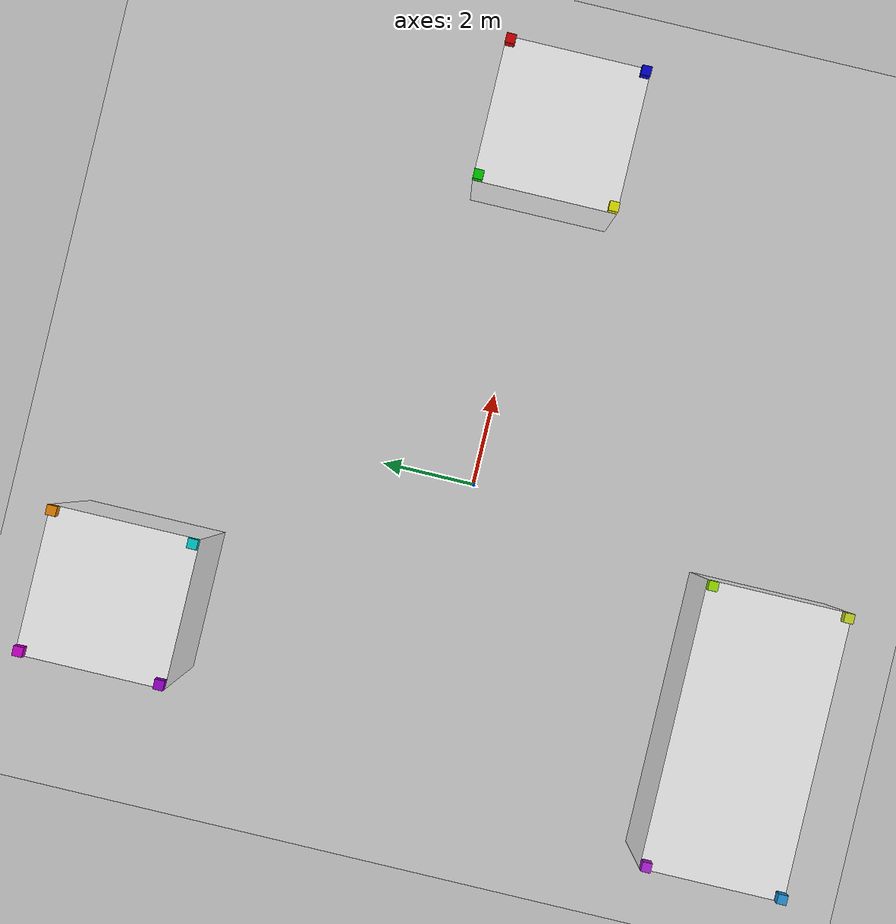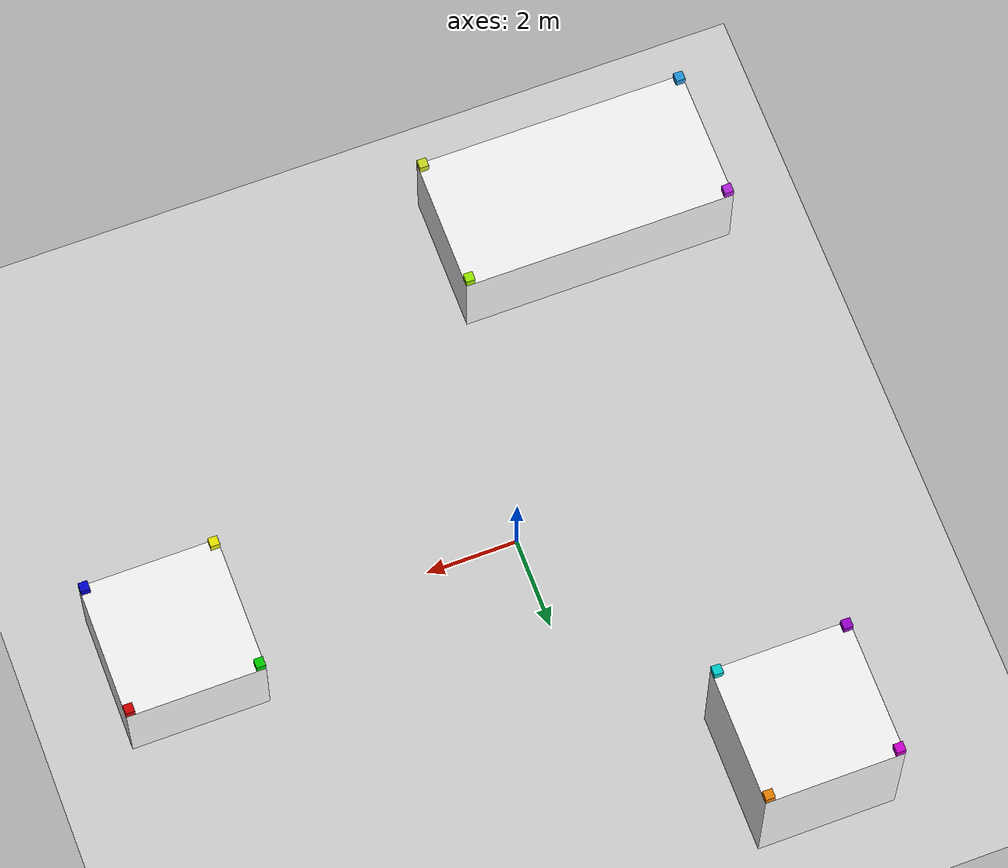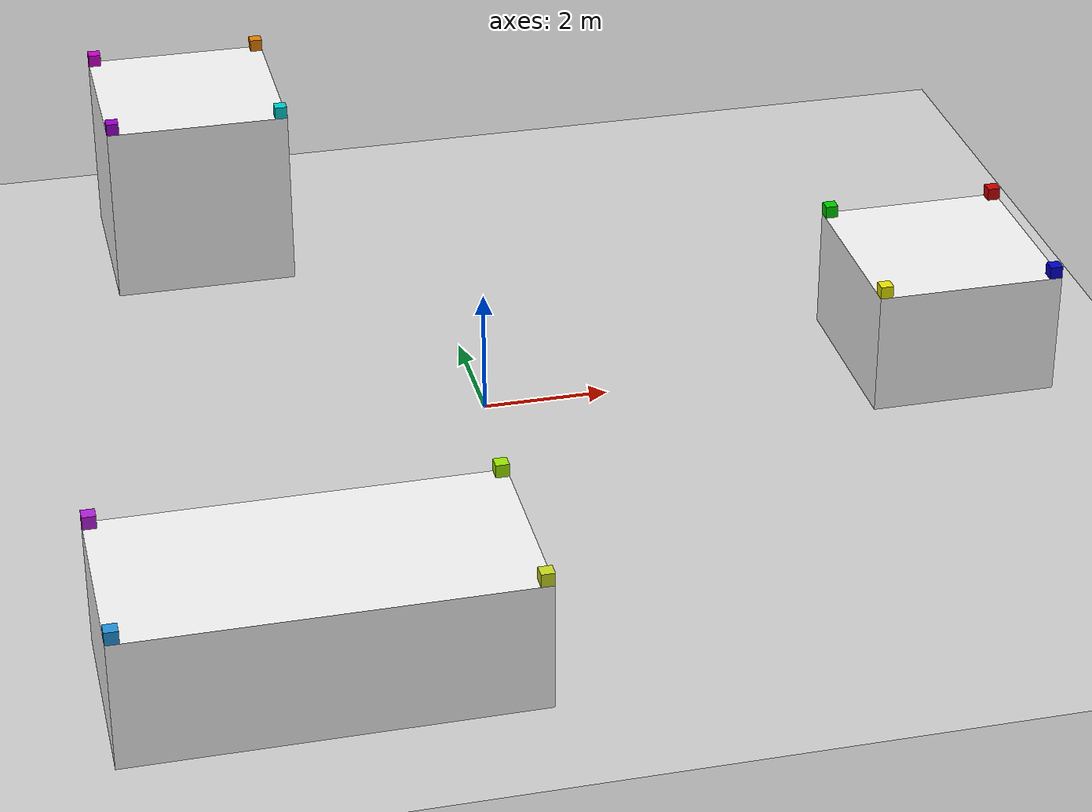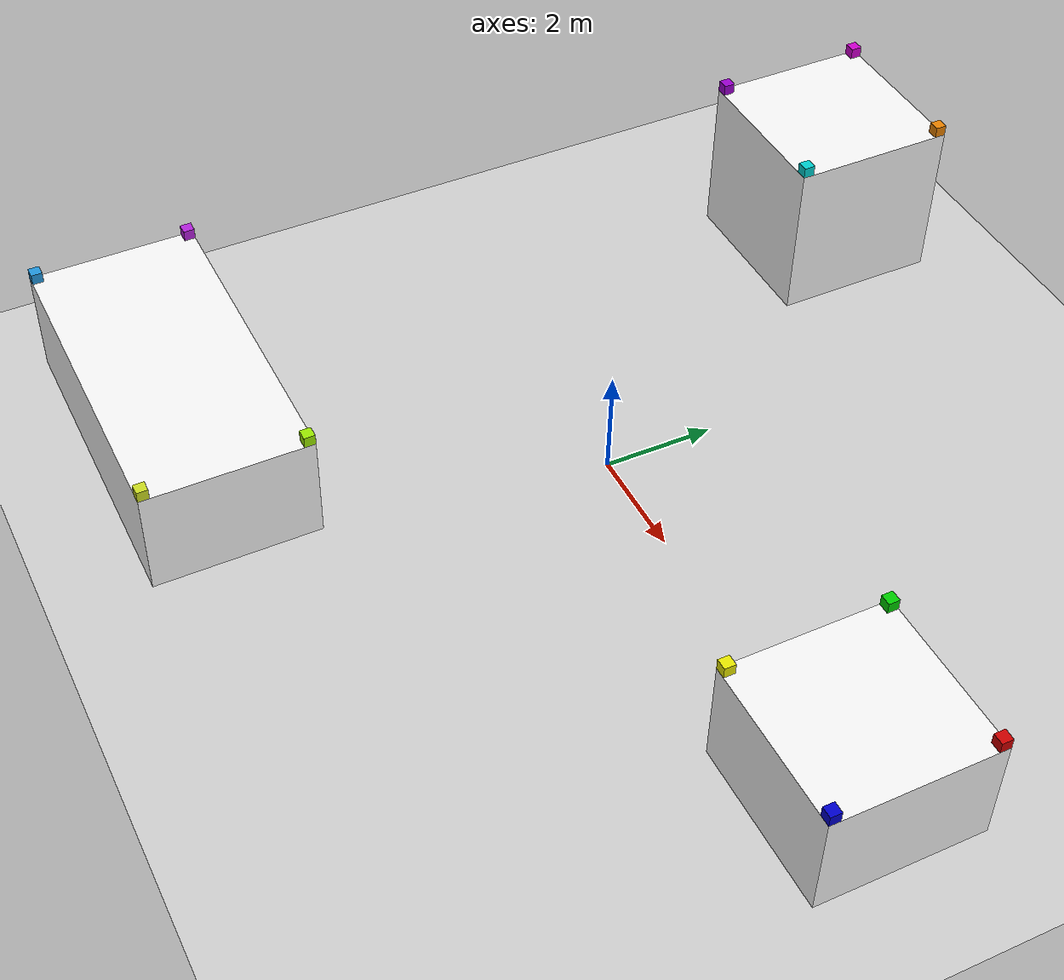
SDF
<?xml version="1.0" ?>

<sdf version="1.6">
  <world name="world_problem4">
    <physics name="4ms" type="ignored">
      <max_step_size>0.004</max_step_size>
      <real_time_factor>1.0</real_time_factor>
    </physics>
    <plugin
      filename="ignition-gazebo-physics-system"
      name="ignition::gazebo::systems::Physics">
    </plugin>
    <plugin
      filename="ignition-gazebo-scene-broadcaster-system"
      name="ignition::gazebo::systems::SceneBroadcaster">
    </plugin>
    <plugin
      filename="ignition-gazebo-user-commands-system"
      name="ignition::gazebo::systems::UserCommands">
    </plugin>
    <plugin
      filename="ignition-gazebo-sensors-system"
      name="ignition::gazebo::systems::Sensors">
      <render_engine>ogre2</render_engine>
    </plugin>
    <plugin
      filename="ignition-gazebo-contact-system"
      name="ignition::gazebo::systems::Contact">
    </plugin>

    <light type="directional" name="sun">
      <cast_shadows>true</cast_shadows>
      <pose>0 0 10 0 0 0</pose>
      <diffuse>0.8 0.8 0.8 1</diffuse>
      <specular>0.2 0.2 0.2 1</specular>
      <attenuation>
        <range>1000</range>
        <constant>0.9</constant>
        <linear>0.01</linear>
        <quadratic>0.001</quadratic>
      </attenuation>
      <direction>-0.5 0.1 -0.9</direction>
    </light>

    <include>
      <uri>model://ground_plane</uri>
    </include>

    <!-- ============ OBSTACULOS ============ -->
    <!-- obstaculo_1: caja 3.0x3.0x2.0, cara superior z=2.0 -->
    <model name="obstaculo_1">
      <static>true</static>
      <pose>7.5 0.0 1.0 0 0 0</pose>
      <link name="obstaculo_1_link">
        <collision name="obstaculo_1_col">
          <geometry>
            <box>
              <size>3.0 3.0 2.0</size>
            </box>
          </geometry>
        </collision>
        <visual name="obstaculo_1_vis">
          <geometry>
            <box>
              <size>3.0 3.0 2.0</size>
            </box>
          </geometry>
          <material>
            <ambient>0.9 0.9 0.9 1</ambient>
            <diffuse>0.95 0.95 0.95 1</diffuse>
            <specular>0.3 0.3 0.3 1</specular>
          </material>
        </visual>
      </link>
    </model>
    <!-- obstaculo_2: caja 3.0x3.0x3.0, cara superior z=3.0 -->
    <model name="obstaculo_2">
      <static>true</static>
      <pose>-3.75 6.5 1.5 0 0 0</pose>
      <link name="obstaculo_2_link">
        <collision name="obstaculo_2_col">
          <geometry>
            <box>
              <size>3.0 3.0 3.0</size>
            </box>
          </geometry>
        </collision>
        <visual name="obstaculo_2_vis">
          <geometry>
            <box>
              <size>3.0 3.0 3.0</size>
            </box>
          </geometry>
          <material>
            <ambient>0.9 0.9 0.9 1</ambient>
            <diffuse>0.95 0.95 0.95 1</diffuse>
            <specular>0.3 0.3 0.3 1</specular>
          </material>
        </visual>
      </link>
    </model>
    <!-- obstaculo_3: caja 6.0x3.0x2.0, cara superior z=2.0 -->
    <model name="obstaculo_3">
      <static>true</static>
      <pose>-3.75 -6.5 1.0 0 0 0</pose>
      <link name="obstaculo_3_link">
        <collision name="obstaculo_3_col">
          <geometry>
            <box>
              <size>6.0 3.0 2.0</size>
            </box>
          </geometry>
        </collision>
        <visual name="obstaculo_3_vis">
          <geometry>
            <box>
              <size>6.0 3.0 2.0</size>
            </box>
          </geometry>
          <material>
            <ambient>0.9 0.9 0.9 1</ambient>
            <diffuse>0.95 0.95 0.95 1</diffuse>
            <specular>0.3 0.3 0.3 1</specular>
          </material>
        </visual>
      </link>
    </model>

    <!-- ====== CUBOS-OBJETIVO (0.2x0.2x0.2) ====== -->
    <!-- tgt1 (rojo) sobre obstaculo_1 -->
    <model name="cubo_rojo">
      <static>true</static>
      <pose>8.9 1.4 2.1 0 0 0</pose>
      <link name="cubo_rojo_link">
        <collision name="cubo_rojo_col">
          <geometry>
            <box>
              <size>0.2 0.2 0.2</size>
            </box>
          </geometry>
        </collision>
        <visual name="cubo_rojo_vis">
          <geometry>
            <box>
              <size>0.2 0.2 0.2</size>
            </box>
          </geometry>
          <material>
            <ambient>0.5 0.0 0.0 1</ambient>
            <diffuse>0.8 0.0 0.0 1</diffuse>
            <specular>0.5 0.1 0.1 1</specular>
          </material>
        </visual>
      </link>
    </model>
    <!-- tgt2 (amarillo) sobre obstaculo_1 -->
    <model name="cubo_amarillo">
      <static>true</static>
      <pose>6.1 -1.4 2.1 0 0 0</pose>
      <link name="cubo_amarillo_link">
        <collision name="cubo_amarillo_col">
          <geometry>
            <box>
              <size>0.2 0.2 0.2</size>
            </box>
          </geometry>
        </collision>
        <visual name="cubo_amarillo_vis">
          <geometry>
            <box>
              <size>0.2 0.2 0.2</size>
            </box>
          </geometry>
          <material>
            <ambient>0.5 0.5 0.0 1</ambient>
            <diffuse>0.9 0.9 0.0 1</diffuse>
            <specular>0.5 0.5 0.1 1</specular>
          </material>
        </visual>
      </link>
    </model>
    <!-- tgt3 (azul) sobre obstaculo_1 -->
    <model name="cubo_azul">
      <static>true</static>
      <pose>8.9 -1.4 2.1 0 0 0</pose>
      <link name="cubo_azul_link">
        <collision name="cubo_azul_col">
          <geometry>
            <box>
              <size>0.2 0.2 0.2</size>
            </box>
          </geometry>
        </collision>
        <visual name="cubo_azul_vis">
          <geometry>
            <box>
              <size>0.2 0.2 0.2</size>
            </box>
          </geometry>
          <material>
            <ambient>0.0 0.0 0.5 1</ambient>
            <diffuse>0.0 0.0 0.8 1</diffuse>
            <specular>0.1 0.1 0.5 1</specular>
          </material>
        </visual>
      </link>
    </model>
    <!-- tgt4 (verde) sobre obstaculo_1 -->
    <model name="cubo_verde">
      <static>true</static>
      <pose>6.1 1.4 2.1 0 0 0</pose>
      <link name="cubo_verde_link">
        <collision name="cubo_verde_col">
          <geometry>
            <box>
              <size>0.2 0.2 0.2</size>
            </box>
          </geometry>
        </collision>
        <visual name="cubo_verde_vis">
          <geometry>
            <box>
              <size>0.2 0.2 0.2</size>
            </box>
          </geometry>
          <material>
            <ambient>0.0 0.5 0.0 1</ambient>
            <diffuse>0.0 0.8 0.0 1</diffuse>
            <specular>0.1 0.5 0.1 1</specular>
          </material>
        </visual>
      </link>
    </model>
    <!-- tgt5 (naranja) sobre obstaculo_2 -->
    <model name="cubo_naranja">
      <static>true</static>
      <pose>-2.35 7.9 3.1 0 0 0</pose>
      <link name="cubo_naranja_link">
        <collision name="cubo_naranja_col">
          <geometry>
            <box>
              <size>0.2 0.2 0.2</size>
            </box>
          </geometry>
        </collision>
        <visual name="cubo_naranja_vis">
          <geometry>
            <box>
              <size>0.2 0.2 0.2</size>
            </box>
          </geometry>
          <material>
            <ambient>0.5 0.25 0.0 1</ambient>
            <diffuse>0.9 0.5 0.0 1</diffuse>
            <specular>0.5 0.3 0.1 1</specular>
          </material>
        </visual>
      </link>
    </model>
    <!-- tgt6 (morado) sobre obstaculo_2 -->
    <model name="cubo_morado">
      <static>true</static>
      <pose>-5.15 5.1 3.1 0 0 0</pose>
      <link name="cubo_morado_link">
        <collision name="cubo_morado_col">
          <geometry>
            <box>
              <size>0.2 0.2 0.2</size>
            </box>
          </geometry>
        </collision>
        <visual name="cubo_morado_vis">
          <geometry>
            <box>
              <size>0.2 0.2 0.2</size>
            </box>
          </geometry>
          <material>
            <ambient>0.3 0.0 0.4 1</ambient>
            <diffuse>0.6 0.0 0.8 1</diffuse>
            <specular>0.3 0.1 0.5 1</specular>
          </material>
        </visual>
      </link>
    </model>
    <!-- tgt7 (cian) sobre obstaculo_2 -->
    <model name="cubo_cian">
      <static>true</static>
      <pose>-2.35 5.1 3.1 0 0 0</pose>
      <link name="cubo_cian_link">
        <collision name="cubo_cian_col">
          <geometry>
            <box>
              <size>0.2 0.2 0.2</size>
            </box>
          </geometry>
        </collision>
        <visual name="cubo_cian_vis">
          <geometry>
            <box>
              <size>0.2 0.2 0.2</size>
            </box>
          </geometry>
          <material>
            <ambient>0.0 0.5 0.5 1</ambient>
            <diffuse>0.0 0.8 0.8 1</diffuse>
            <specular>0.1 0.5 0.5 1</specular>
          </material>
        </visual>
      </link>
    </model>
    <!-- tgt8 (magenta) sobre obstaculo_2 -->
    <model name="cubo_magenta">
      <static>true</static>
      <pose>-5.15 7.9 3.1 0 0 0</pose>
      <link name="cubo_magenta_link">
        <collision name="cubo_magenta_col">
          <geometry>
            <box>
              <size>0.2 0.2 0.2</size>
            </box>
          </geometry>
        </collision>
        <visual name="cubo_magenta_vis">
          <geometry>
            <box>
              <size>0.2 0.2 0.2</size>
            </box>
          </geometry>
          <material>
            <ambient>0.5 0.0 0.5 1</ambient>
            <diffuse>0.8 0.0 0.8 1</diffuse>
            <specular>0.5 0.1 0.5 1</specular>
          </material>
        </visual>
      </link>
    </model>
    <!-- tgt9 (lima) sobre obstaculo_3 -->
    <model name="cubo_lima">
      <static>true</static>
      <pose>-0.85 -5.1 2.1 0 0 0</pose>
      <link name="cubo_lima_link">
        <collision name="cubo_lima_col">
          <geometry>
            <box>
              <size>0.2 0.2 0.2</size>
            </box>
          </geometry>
        </collision>
        <visual name="cubo_lima_vis">
          <geometry>
            <box>
              <size>0.2 0.2 0.2</size>
            </box>
          </geometry>
          <material>
            <ambient>0.3 0.5 0.0 1</ambient>
            <diffuse>0.6 0.9 0.0 1</diffuse>
            <specular>0.3 0.5 0.1 1</specular>
          </material>
        </visual>
      </link>
    </model>
    <!-- tgt10 (color9) sobre obstaculo_3 -->
    <model name="cubo_color9">
      <static>true</static>
      <pose>-6.65 -7.9 2.1 0 0 0</pose>
      <link name="cubo_color9_link">
        <collision name="cubo_color9_col">
          <geometry>
            <box>
              <size>0.2 0.2 0.2</size>
            </box>
          </geometry>
        </collision>
        <visual name="cubo_color9_vis">
          <geometry>
            <box>
              <size>0.2 0.2 0.2</size>
            </box>
          </geometry>
          <material>
            <ambient>0.08 0.35 0.51 1</ambient>
            <diffuse>0.13 0.58 0.85 1</diffuse>
            <specular>0.06 0.29 0.42 1</specular>
          </material>
        </visual>
      </link>
    </model>
    <!-- tgt11 (color10) sobre obstaculo_3 -->
    <model name="cubo_color10">
      <static>true</static>
      <pose>-0.85 -7.9 2.1 0 0 0</pose>
      <link name="cubo_color10_link">
        <collision name="cubo_color10_col">
          <geometry>
            <box>
              <size>0.2 0.2 0.2</size>
            </box>
          </geometry>
        </collision>
        <visual name="cubo_color10_vis">
          <geometry>
            <box>
              <size>0.2 0.2 0.2</size>
            </box>
          </geometry>
          <material>
            <ambient>0.47 0.51 0.08 1</ambient>
            <diffuse>0.79 0.85 0.13 1</diffuse>
            <specular>0.40 0.42 0.06 1</specular>
          </material>
        </visual>
      </link>
    </model>
    <!-- tgt12 (color11) sobre obstaculo_3 -->
    <model name="cubo_color11">
      <static>true</static>
      <pose>-6.65 -5.1 2.1 0 0 0</pose>
      <link name="cubo_color11_link">
        <collision name="cubo_color11_col">
          <geometry>
            <box>
              <size>0.2 0.2 0.2</size>
            </box>
          </geometry>
        </collision>
        <visual name="cubo_color11_vis">
          <geometry>
            <box>
              <size>0.2 0.2 0.2</size>
            </box>
          </geometry>
          <material>
            <ambient>0.42 0.08 0.51 1</ambient>
            <diffuse>0.70 0.13 0.85 1</diffuse>
            <specular>0.35 0.06 0.42 1</specular>
          </material>
        </visual>
      </link>
    </model>

  </world>
</sdf>
